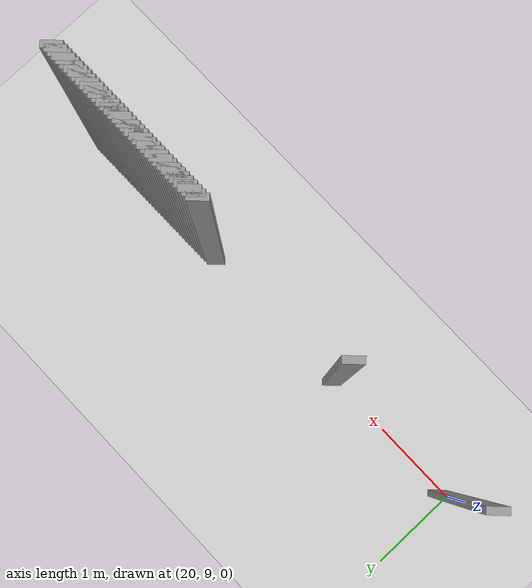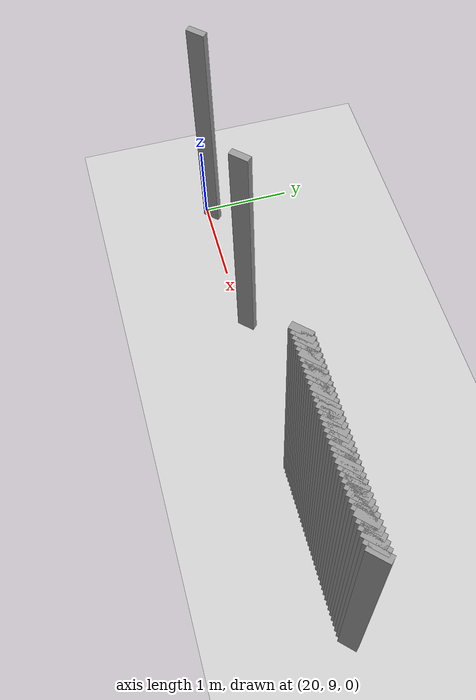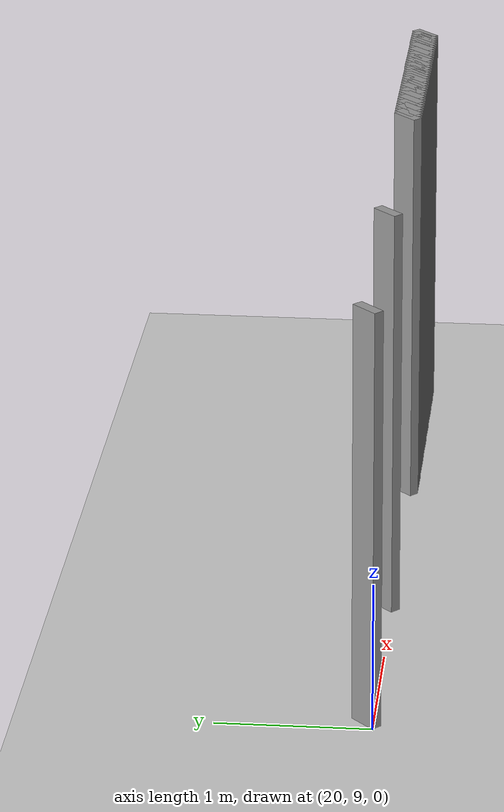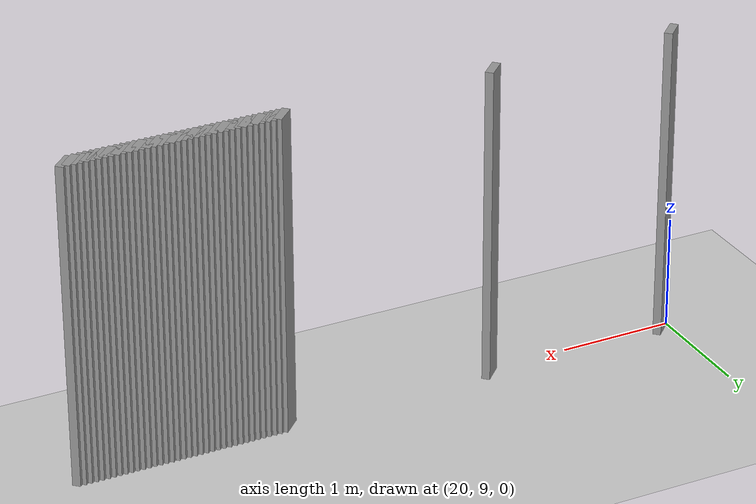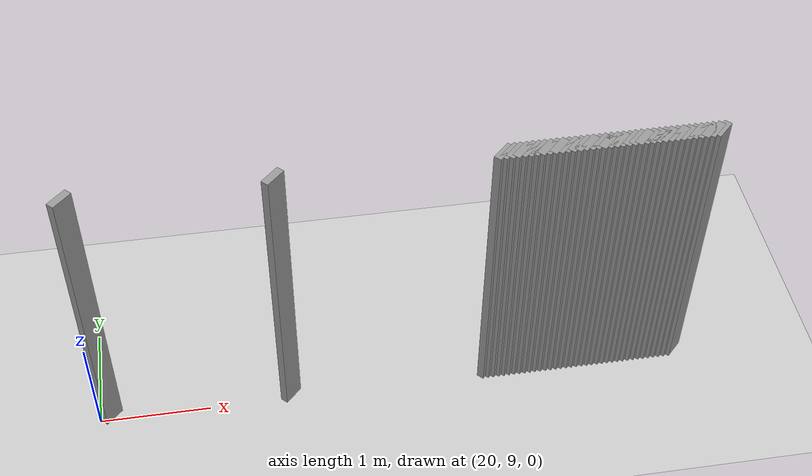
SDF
<sdf version="1.5">
 <world name="default">
  <include><uri>model://ground_plane</uri></include>
  <include><uri>model://sun</uri></include>
  <model name="grey_wall_3466">
   <static>1</static>
   <link name="link">
    <pose>20.1 9.05  1.4 0 0 -0.785398163397</pose>
    <collision name="collision"><geometry><box><size>0.0707106781187 .2  2.8</size></box></geometry></collision>
    <visual name="visual">
     <cast_shadows>0</cast_shadows>
     <geometry><box><size>0.0707106781187 .2  2.8</size></box></geometry>
     <material>
      <script>
       <uri>model://grey_wall/materials/scripts</uri>
       <uri>model://grey_wall/materials/textures</uri>
       <name>vrc/grey_wall</name>
      </script>
     </material>
    </visual>
   </link>
  </model>
  <model name="grey_wall_3467">
   <static>1</static>
   <link name="link">
    <pose>21.75 9.05  1.4 0 0 -0.785398163397</pose>
    <collision name="collision"><geometry><box><size>0.0707106781187 .2  2.8</size></box></geometry></collision>
    <visual name="visual">
     <cast_shadows>0</cast_shadows>
     <geometry><box><size>0.0707106781187 .2  2.8</size></box></geometry>
     <material>
      <script>
       <uri>model://grey_wall/materials/scripts</uri>
       <uri>model://grey_wall/materials/textures</uri>
       <name>vrc/grey_wall</name>
      </script>
     </material>
    </visual>
   </link>
  </model>
  <model name="grey_wall_3468">
   <static>1</static>
   <link name="link">
    <pose>23.6 9.05  1.4 0 0 -0.785398163397</pose>
    <collision name="collision"><geometry><box><size>0.0707106781187 .2  2.8</size></box></geometry></collision>
    <visual name="visual">
     <cast_shadows>0</cast_shadows>
     <geometry><box><size>0.0707106781187 .2  2.8</size></box></geometry>
     <material>
      <script>
       <uri>model://grey_wall/materials/scripts</uri>
       <uri>model://grey_wall/materials/textures</uri>
       <name>vrc/grey_wall</name>
      </script>
     </material>
    </visual>
   </link>
  </model>
  <model name="grey_wall_3469">
   <static>1</static>
   <link name="link">
    <pose>23.65 9.05  1.4 0 0 -0.785398163397</pose>
    <collision name="collision"><geometry><box><size>0.0707106781187 .2  2.8</size></box></geometry></collision>
    <visual name="visual">
     <cast_shadows>0</cast_shadows>
     <geometry><box><size>0.0707106781187 .2  2.8</size></box></geometry>
     <material>
      <script>
       <uri>model://grey_wall/materials/scripts</uri>
       <uri>model://grey_wall/materials/textures</uri>
       <name>vrc/grey_wall</name>
      </script>
     </material>
    </visual>
   </link>
  </model>
  <model name="grey_wall_3470">
   <static>1</static>
   <link name="link">
    <pose>23.7 9.05  1.4 0 0 -0.785398163397</pose>
    <collision name="collision"><geometry><box><size>0.0707106781187 .2  2.8</size></box></geometry></collision>
    <visual name="visual">
     <cast_shadows>0</cast_shadows>
     <geometry><box><size>0.0707106781187 .2  2.8</size></box></geometry>
     <material>
      <script>
       <uri>model://grey_wall/materials/scripts</uri>
       <uri>model://grey_wall/materials/textures</uri>
       <name>vrc/grey_wall</name>
      </script>
     </material>
    </visual>
   </link>
  </model>
  <model name="grey_wall_3471">
   <static>1</static>
   <link name="link">
    <pose>23.75 9.05  1.4 0 0 -0.785398163397</pose>
    <collision name="collision"><geometry><box><size>0.0707106781187 .2  2.8</size></box></geometry></collision>
    <visual name="visual">
     <cast_shadows>0</cast_shadows>
     <geometry><box><size>0.0707106781187 .2  2.8</size></box></geometry>
     <material>
      <script>
       <uri>model://grey_wall/materials/scripts</uri>
       <uri>model://grey_wall/materials/textures</uri>
       <name>vrc/grey_wall</name>
      </script>
     </material>
    </visual>
   </link>
  </model>
  <model name="grey_wall_3472">
   <static>1</static>
   <link name="link">
    <pose>23.8 9.05  1.4 0 0 -0.785398163397</pose>
    <collision name="collision"><geometry><box><size>0.0707106781187 .2  2.8</size></box></geometry></collision>
    <visual name="visual">
     <cast_shadows>0</cast_shadows>
     <geometry><box><size>0.0707106781187 .2  2.8</size></box></geometry>
     <material>
      <script>
       <uri>model://grey_wall/materials/scripts</uri>
       <uri>model://grey_wall/materials/textures</uri>
       <name>vrc/grey_wall</name>
      </script>
     </material>
    </visual>
   </link>
  </model>
  <model name="grey_wall_3473">
   <static>1</static>
   <link name="link">
    <pose>23.85 9.05  1.4 0 0 -0.785398163397</pose>
    <collision name="collision"><geometry><box><size>0.0707106781187 .2  2.8</size></box></geometry></collision>
    <visual name="visual">
     <cast_shadows>0</cast_shadows>
     <geometry><box><size>0.0707106781187 .2  2.8</size></box></geometry>
     <material>
      <script>
       <uri>model://grey_wall/materials/scripts</uri>
       <uri>model://grey_wall/materials/textures</uri>
       <name>vrc/grey_wall</name>
      </script>
     </material>
    </visual>
   </link>
  </model>
  <model name="grey_wall_3474">
   <static>1</static>
   <link name="link">
    <pose>23.9 9.05  1.4 0 0 -0.785398163397</pose>
    <collision name="collision"><geometry><box><size>0.0707106781187 .2  2.8</size></box></geometry></collision>
    <visual name="visual">
     <cast_shadows>0</cast_shadows>
     <geometry><box><size>0.0707106781187 .2  2.8</size></box></geometry>
     <material>
      <script>
       <uri>model://grey_wall/materials/scripts</uri>
       <uri>model://grey_wall/materials/textures</uri>
       <name>vrc/grey_wall</name>
      </script>
     </material>
    </visual>
   </link>
  </model>
  <model name="grey_wall_3475">
   <static>1</static>
   <link name="link">
    <pose>23.95 9.05  1.4 0 0 -0.785398163397</pose>
    <collision name="collision"><geometry><box><size>0.0707106781187 .2  2.8</size></box></geometry></collision>
    <visual name="visual">
     <cast_shadows>0</cast_shadows>
     <geometry><box><size>0.0707106781187 .2  2.8</size></box></geometry>
     <material>
      <script>
       <uri>model://grey_wall/materials/scripts</uri>
       <uri>model://grey_wall/materials/textures</uri>
       <name>vrc/grey_wall</name>
      </script>
     </material>
    </visual>
   </link>
  </model>
  <model name="grey_wall_3476">
   <static>1</static>
   <link name="link">
    <pose>24.0 9.05  1.4 0 0 -0.785398163397</pose>
    <collision name="collision"><geometry><box><size>0.0707106781187 .2  2.8</size></box></geometry></collision>
    <visual name="visual">
     <cast_shadows>0</cast_shadows>
     <geometry><box><size>0.0707106781187 .2  2.8</size></box></geometry>
     <material>
      <script>
       <uri>model://grey_wall/materials/scripts</uri>
       <uri>model://grey_wall/materials/textures</uri>
       <name>vrc/grey_wall</name>
      </script>
     </material>
    </visual>
   </link>
  </model>
  <model name="grey_wall_3477">
   <static>1</static>
   <link name="link">
    <pose>24.05 9.05  1.4 0 0 -0.785398163397</pose>
    <collision name="collision"><geometry><box><size>0.0707106781187 .2  2.8</size></box></geometry></collision>
    <visual name="visual">
     <cast_shadows>0</cast_shadows>
     <geometry><box><size>0.0707106781187 .2  2.8</size></box></geometry>
     <material>
      <script>
       <uri>model://grey_wall/materials/scripts</uri>
       <uri>model://grey_wall/materials/textures</uri>
       <name>vrc/grey_wall</name>
      </script>
     </material>
    </visual>
   </link>
  </model>
  <model name="grey_wall_3478">
   <static>1</static>
   <link name="link">
    <pose>24.1 9.05  1.4 0 0 -0.785398163397</pose>
    <collision name="collision"><geometry><box><size>0.0707106781187 .2  2.8</size></box></geometry></collision>
    <visual name="visual">
     <cast_shadows>0</cast_shadows>
     <geometry><box><size>0.0707106781187 .2  2.8</size></box></geometry>
     <material>
      <script>
       <uri>model://grey_wall/materials/scripts</uri>
       <uri>model://grey_wall/materials/textures</uri>
       <name>vrc/grey_wall</name>
      </script>
     </material>
    </visual>
   </link>
  </model>
  <model name="grey_wall_3479">
   <static>1</static>
   <link name="link">
    <pose>24.15 9.05  1.4 0 0 -0.785398163397</pose>
    <collision name="collision"><geometry><box><size>0.0707106781187 .2  2.8</size></box></geometry></collision>
    <visual name="visual">
     <cast_shadows>0</cast_shadows>
     <geometry><box><size>0.0707106781187 .2  2.8</size></box></geometry>
     <material>
      <script>
       <uri>model://grey_wall/materials/scripts</uri>
       <uri>model://grey_wall/materials/textures</uri>
       <name>vrc/grey_wall</name>
      </script>
     </material>
    </visual>
   </link>
  </model>
  <model name="grey_wall_3480">
   <static>1</static>
   <link name="link">
    <pose>24.2 9.05  1.4 0 0 -0.785398163397</pose>
    <collision name="collision"><geometry><box><size>0.0707106781187 .2  2.8</size></box></geometry></collision>
    <visual name="visual">
     <cast_shadows>0</cast_shadows>
     <geometry><box><size>0.0707106781187 .2  2.8</size></box></geometry>
     <material>
      <script>
       <uri>model://grey_wall/materials/scripts</uri>
       <uri>model://grey_wall/materials/textures</uri>
       <name>vrc/grey_wall</name>
      </script>
     </material>
    </visual>
   </link>
  </model>
  <model name="grey_wall_3481">
   <static>1</static>
   <link name="link">
    <pose>24.25 9.05  1.4 0 0 -0.785398163397</pose>
    <collision name="collision"><geometry><box><size>0.0707106781187 .2  2.8</size></box></geometry></collision>
    <visual name="visual">
     <cast_shadows>0</cast_shadows>
     <geometry><box><size>0.0707106781187 .2  2.8</size></box></geometry>
     <material>
      <script>
       <uri>model://grey_wall/materials/scripts</uri>
       <uri>model://grey_wall/materials/textures</uri>
       <name>vrc/grey_wall</name>
      </script>
     </material>
    </visual>
   </link>
  </model>
  <model name="grey_wall_3482">
   <static>1</static>
   <link name="link">
    <pose>24.3 9.05  1.4 0 0 -0.785398163397</pose>
    <collision name="collision"><geometry><box><size>0.0707106781187 .2  2.8</size></box></geometry></collision>
    <visual name="visual">
     <cast_shadows>0</cast_shadows>
     <geometry><box><size>0.0707106781187 .2  2.8</size></box></geometry>
     <material>
      <script>
       <uri>model://grey_wall/materials/scripts</uri>
       <uri>model://grey_wall/materials/textures</uri>
       <name>vrc/grey_wall</name>
      </script>
     </material>
    </visual>
   </link>
  </model>
  <model name="grey_wall_3483">
   <static>1</static>
   <link name="link">
    <pose>24.35 9.05  1.4 0 0 -0.785398163397</pose>
    <collision name="collision"><geometry><box><size>0.0707106781187 .2  2.8</size></box></geometry></collision>
    <visual name="visual">
     <cast_shadows>0</cast_shadows>
     <geometry><box><size>0.0707106781187 .2  2.8</size></box></geometry>
     <material>
      <script>
       <uri>model://grey_wall/materials/scripts</uri>
       <uri>model://grey_wall/materials/textures</uri>
       <name>vrc/grey_wall</name>
      </script>
     </material>
    </visual>
   </link>
  </model>
  <model name="grey_wall_3484">
   <static>1</static>
   <link name="link">
    <pose>24.4 9.05  1.4 0 0 -0.785398163397</pose>
    <collision name="collision"><geometry><box><size>0.0707106781187 .2  2.8</size></box></geometry></collision>
    <visual name="visual">
     <cast_shadows>0</cast_shadows>
     <geometry><box><size>0.0707106781187 .2  2.8</size></box></geometry>
     <material>
      <script>
       <uri>model://grey_wall/materials/scripts</uri>
       <uri>model://grey_wall/materials/textures</uri>
       <name>vrc/grey_wall</name>
      </script>
     </material>
    </visual>
   </link>
  </model>
  <model name="grey_wall_3485">
   <static>1</static>
   <link name="link">
    <pose>24.45 9.05  1.4 0 0 -0.785398163397</pose>
    <collision name="collision"><geometry><box><size>0.0707106781187 .2  2.8</size></box></geometry></collision>
    <visual name="visual">
     <cast_shadows>0</cast_shadows>
     <geometry><box><size>0.0707106781187 .2  2.8</size></box></geometry>
     <material>
      <script>
       <uri>model://grey_wall/materials/scripts</uri>
       <uri>model://grey_wall/materials/textures</uri>
       <name>vrc/grey_wall</name>
      </script>
     </material>
    </visual>
   </link>
  </model>
  <model name="grey_wall_3486">
   <static>1</static>
   <link name="link">
    <pose>24.5 9.05  1.4 0 0 -0.785398163397</pose>
    <collision name="collision"><geometry><box><size>0.0707106781187 .2  2.8</size></box></geometry></collision>
    <visual name="visual">
     <cast_shadows>0</cast_shadows>
     <geometry><box><size>0.0707106781187 .2  2.8</size></box></geometry>
     <material>
      <script>
       <uri>model://grey_wall/materials/scripts</uri>
       <uri>model://grey_wall/materials/textures</uri>
       <name>vrc/grey_wall</name>
      </script>
     </material>
    </visual>
   </link>
  </model>
  <model name="grey_wall_3487">
   <static>1</static>
   <link name="link">
    <pose>24.55 9.05  1.4 0 0 -0.785398163397</pose>
    <collision name="collision"><geometry><box><size>0.0707106781187 .2  2.8</size></box></geometry></collision>
    <visual name="visual">
     <cast_shadows>0</cast_shadows>
     <geometry><box><size>0.0707106781187 .2  2.8</size></box></geometry>
     <material>
      <script>
       <uri>model://grey_wall/materials/scripts</uri>
       <uri>model://grey_wall/materials/textures</uri>
       <name>vrc/grey_wall</name>
      </script>
     </material>
    </visual>
   </link>
  </model>
  <model name="grey_wall_3488">
   <static>1</static>
   <link name="link">
    <pose>24.6 9.05  1.4 0 0 -0.785398163397</pose>
    <collision name="collision"><geometry><box><size>0.0707106781187 .2  2.8</size></box></geometry></collision>
    <visual name="visual">
     <cast_shadows>0</cast_shadows>
     <geometry><box><size>0.0707106781187 .2  2.8</size></box></geometry>
     <material>
      <script>
       <uri>model://grey_wall/materials/scripts</uri>
       <uri>model://grey_wall/materials/textures</uri>
       <name>vrc/grey_wall</name>
      </script>
     </material>
    </visual>
   </link>
  </model>
  <model name="grey_wall_3489">
   <static>1</static>
   <link name="link">
    <pose>24.65 9.05  1.4 0 0 -0.785398163397</pose>
    <collision name="collision"><geometry><box><size>0.0707106781187 .2  2.8</size></box></geometry></collision>
    <visual name="visual">
     <cast_shadows>0</cast_shadows>
     <geometry><box><size>0.0707106781187 .2  2.8</size></box></geometry>
     <material>
      <script>
       <uri>model://grey_wall/materials/scripts</uri>
       <uri>model://grey_wall/materials/textures</uri>
       <name>vrc/grey_wall</name>
      </script>
     </material>
    </visual>
   </link>
  </model>
  <model name="grey_wall_3490">
   <static>1</static>
   <link name="link">
    <pose>24.7 9.05  1.4 0 0 -0.785398163397</pose>
    <collision name="collision"><geometry><box><size>0.0707106781187 .2  2.8</size></box></geometry></collision>
    <visual name="visual">
     <cast_shadows>0</cast_shadows>
     <geometry><box><size>0.0707106781187 .2  2.8</size></box></geometry>
     <material>
      <script>
       <uri>model://grey_wall/materials/scripts</uri>
       <uri>model://grey_wall/materials/textures</uri>
       <name>vrc/grey_wall</name>
      </script>
     </material>
    </visual>
   </link>
  </model>
  <model name="grey_wall_3491">
   <static>1</static>
   <link name="link">
    <pose>24.75 9.05  1.4 0 0 -0.785398163397</pose>
    <collision name="collision"><geometry><box><size>0.0707106781187 .2  2.8</size></box></geometry></collision>
    <visual name="visual">
     <cast_shadows>0</cast_shadows>
     <geometry><box><size>0.0707106781187 .2  2.8</size></box></geometry>
     <material>
      <script>
       <uri>model://grey_wall/materials/scripts</uri>
       <uri>model://grey_wall/materials/textures</uri>
       <name>vrc/grey_wall</name>
      </script>
     </material>
    </visual>
   </link>
  </model>
  <model name="grey_wall_3492">
   <static>1</static>
   <link name="link">
    <pose>24.8 9.05  1.4 0 0 -0.785398163397</pose>
    <collision name="collision"><geometry><box><size>0.0707106781187 .2  2.8</size></box></geometry></collision>
    <visual name="visual">
     <cast_shadows>0</cast_shadows>
     <geometry><box><size>0.0707106781187 .2  2.8</size></box></geometry>
     <material>
      <script>
       <uri>model://grey_wall/materials/scripts</uri>
       <uri>model://grey_wall/materials/textures</uri>
       <name>vrc/grey_wall</name>
      </script>
     </material>
    </visual>
   </link>
  </model>
  <model name="grey_wall_3493">
   <static>1</static>
   <link name="link">
    <pose>24.85 9.05  1.4 0 0 -0.785398163397</pose>
    <collision name="collision"><geometry><box><size>0.0707106781187 .2  2.8</size></box></geometry></collision>
    <visual name="visual">
     <cast_shadows>0</cast_shadows>
     <geometry><box><size>0.0707106781187 .2  2.8</size></box></geometry>
     <material>
      <script>
       <uri>model://grey_wall/materials/scripts</uri>
       <uri>model://grey_wall/materials/textures</uri>
       <name>vrc/grey_wall</name>
      </script>
     </material>
    </visual>
   </link>
  </model>
  <model name="grey_wall_3494">
   <static>1</static>
   <link name="link">
    <pose>24.9 9.05  1.4 0 0 -0.785398163397</pose>
    <collision name="collision"><geometry><box><size>0.0707106781187 .2  2.8</size></box></geometry></collision>
    <visual name="visual">
     <cast_shadows>0</cast_shadows>
     <geometry><box><size>0.0707106781187 .2  2.8</size></box></geometry>
     <material>
      <script>
       <uri>model://grey_wall/materials/scripts</uri>
       <uri>model://grey_wall/materials/textures</uri>
       <name>vrc/grey_wall</name>
      </script>
     </material>
    </visual>
   </link>
  </model>
  <model name="grey_wall_3495">
   <static>1</static>
   <link name="link">
    <pose>24.95 9.05  1.4 0 0 -0.785398163397</pose>
    <collision name="collision"><geometry><box><size>0.0707106781187 .2  2.8</size></box></geometry></collision>
    <visual name="visual">
     <cast_shadows>0</cast_shadows>
     <geometry><box><size>0.0707106781187 .2  2.8</size></box></geometry>
     <material>
      <script>
       <uri>model://grey_wall/materials/scripts</uri>
       <uri>model://grey_wall/materials/textures</uri>
       <name>vrc/grey_wall</name>
      </script>
     </material>
    </visual>
   </link>
  </model>
  <model name="grey_wall_3496">
   <static>1</static>
   <link name="link">
    <pose>25.0 9.05  1.4 0 0 -0.785398163397</pose>
    <collision name="collision"><geometry><box><size>0.0707106781187 .2  2.8</size></box></geometry></collision>
    <visual name="visual">
     <cast_shadows>0</cast_shadows>
     <geometry><box><size>0.0707106781187 .2  2.8</size></box></geometry>
     <material>
      <script>
       <uri>model://grey_wall/materials/scripts</uri>
       <uri>model://grey_wall/materials/textures</uri>
       <name>vrc/grey_wall</name>
      </script>
     </material>
    </visual>
   </link>
  </model>
  <model name="grey_wall_3497">
   <static>1</static>
   <link name="link">
    <pose>25.05 9.05  1.4 0 0 -0.785398163397</pose>
    <collision name="collision"><geometry><box><size>0.0707106781187 .2  2.8</size></box></geometry></collision>
    <visual name="visual">
     <cast_shadows>0</cast_shadows>
     <geometry><box><size>0.0707106781187 .2  2.8</size></box></geometry>
     <material>
      <script>
       <uri>model://grey_wall/materials/scripts</uri>
       <uri>model://grey_wall/materials/textures</uri>
       <name>vrc/grey_wall</name>
      </script>
     </material>
    </visual>
   </link>
  </model>
  <model name="grey_wall_3498">
   <static>1</static>
   <link name="link">
    <pose>25.1 9.05  1.4 0 0 -0.785398163397</pose>
    <collision name="collision"><geometry><box><size>0.0707106781187 .2  2.8</size></box></geometry></collision>
    <visual name="visual">
     <cast_shadows>0</cast_shadows>
     <geometry><box><size>0.0707106781187 .2  2.8</size></box></geometry>
     <material>
      <script>
       <uri>model://grey_wall/materials/scripts</uri>
       <uri>model://grey_wall/materials/textures</uri>
       <name>vrc/grey_wall</name>
      </script>
     </material>
    </visual>
   </link>
  </model>
  <model name="grey_wall_3499">
   <static>1</static>
   <link name="link">
    <pose>25.15 9.05  1.4 0 0 -0.785398163397</pose>
    <collision name="collision"><geometry><box><size>0.0707106781187 .2  2.8</size></box></geometry></collision>
    <visual name="visual">
     <cast_shadows>0</cast_shadows>
     <geometry><box><size>0.0707106781187 .2  2.8</size></box></geometry>
     <material>
      <script>
       <uri>model://grey_wall/materials/scripts</uri>
       <uri>model://grey_wall/materials/textures</uri>
       <name>vrc/grey_wall</name>
      </script>
     </material>
    </visual>
   </link>
  </model>
  <model name="grey_wall_3500">
   <static>1</static>
   <link name="link">
    <pose>25.2 9.05  1.4 0 0 -0.785398163397</pose>
    <collision name="collision"><geometry><box><size>0.0707106781187 .2  2.8</size></box></geometry></collision>
    <visual name="visual">
     <cast_shadows>0</cast_shadows>
     <geometry><box><size>0.0707106781187 .2  2.8</size></box></geometry>
     <material>
      <script>
       <uri>model://grey_wall/materials/scripts</uri>
       <uri>model://grey_wall/materials/textures</uri>
       <name>vrc/grey_wall</name>
      </script>
     </material>
    </visual>
   </link>
  </model>
  <model name="grey_wall_3501">
   <static>1</static>
   <link name="link">
    <pose>25.25 9.05  1.4 0 0 -0.785398163397</pose>
    <collision name="collision"><geometry><box><size>0.0707106781187 .2  2.8</size></box></geometry></collision>
    <visual name="visual">
     <cast_shadows>0</cast_shadows>
     <geometry><box><size>0.0707106781187 .2  2.8</size></box></geometry>
     <material>
      <script>
       <uri>model://grey_wall/materials/scripts</uri>
       <uri>model://grey_wall/materials/textures</uri>
       <name>vrc/grey_wall</name>
      </script>
     </material>
    </visual>
   </link>
  </model>
  <model name="grey_wall_3502">
   <static>1</static>
   <link name="link">
    <pose>25.3 9.05  1.4 0 0 -0.785398163397</pose>
    <collision name="collision"><geometry><box><size>0.0707106781187 .2  2.8</size></box></geometry></collision>
    <visual name="visual">
     <cast_shadows>0</cast_shadows>
     <geometry><box><size>0.0707106781187 .2  2.8</size></box></geometry>
     <material>
      <script>
       <uri>model://grey_wall/materials/scripts</uri>
       <uri>model://grey_wall/materials/textures</uri>
       <name>vrc/grey_wall</name>
      </script>
     </material>
    </visual>
   </link>
  </model>
  <model name="grey_wall_3503">
   <static>1</static>
   <link name="link">
    <pose>25.35 9.05  1.4 0 0 -0.785398163397</pose>
    <collision name="collision"><geometry><box><size>0.0707106781187 .2  2.8</size></box></geometry></collision>
    <visual name="visual">
     <cast_shadows>0</cast_shadows>
     <geometry><box><size>0.0707106781187 .2  2.8</size></box></geometry>
     <material>
      <script>
       <uri>model://grey_wall/materials/scripts</uri>
       <uri>model://grey_wall/materials/textures</uri>
       <name>vrc/grey_wall</name>
      </script>
     </material>
    </visual>
   </link>
  </model>
  <model name="grey_wall_3504">
   <static>1</static>
   <link name="link">
    <pose>25.4 9.05  1.4 0 0 -0.785398163397</pose>
    <collision name="collision"><geometry><box><size>0.0707106781187 .2  2.8</size></box></geometry></collision>
    <visual name="visual">
     <cast_shadows>0</cast_shadows>
     <geometry><box><size>0.0707106781187 .2  2.8</size></box></geometry>
     <material>
      <script>
       <uri>model://grey_wall/materials/scripts</uri>
       <uri>model://grey_wall/materials/textures</uri>
       <name>vrc/grey_wall</name>
      </script>
     </material>
    </visual>
   </link>
  </model>
 </world>
</sdf>
